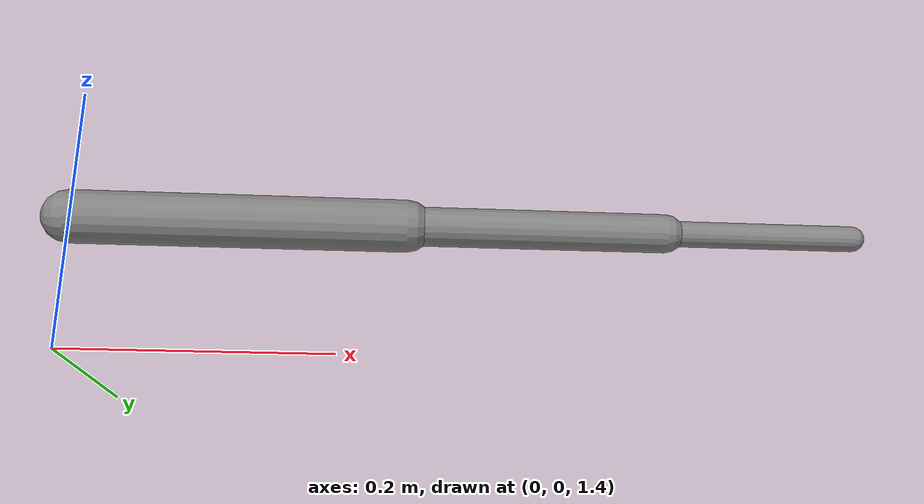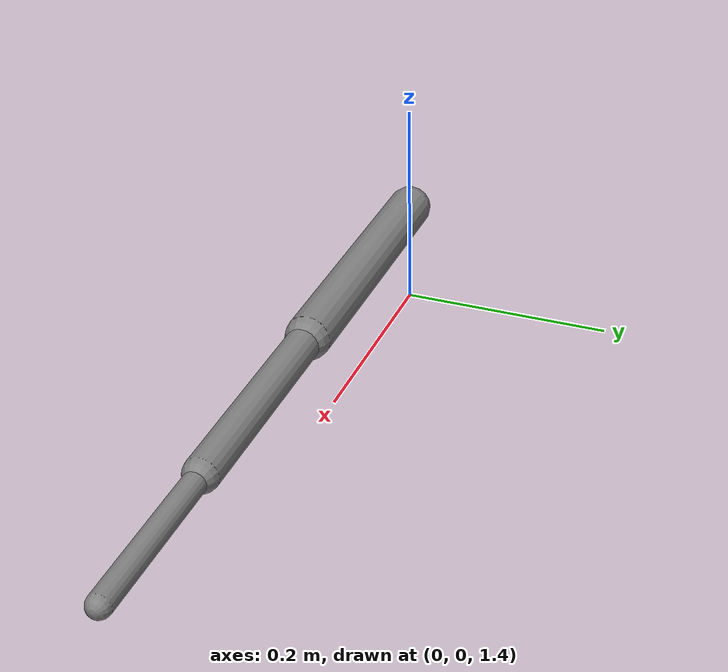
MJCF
<mujoco model="equality_model">
  <option gravity="0 0 -9.81" timestep="0.002"/>
  <worldbody>
    <body name="link1" pos="0 0 1.5">
      <joint name="joint1" type="hinge" axis="0 1 0"
             damping="0.3"/>
      <geom name="link1_geom" type="capsule" fromto="0 0 0 0.25 0 0"
            size="0.02" mass="1.0"/>

      <body name="link2" pos="0.25 0 0">
        <joint name="joint2" type="hinge" axis="0 1 0"
               damping="0.2"/>
        <geom name="link2_geom" type="capsule" fromto="0 0 0 0.2 0 0"
              size="0.015" mass="0.5"/>

        <body name="link3" pos="0.2 0 0">
          <joint name="joint3" type="hinge" axis="0 1 0"
                 damping="0.1"/>
          <geom name="link3_geom" type="capsule" fromto="0 0 0 0.15 0 0"
                size="0.01" mass="0.3"/>
        </body>
      </body>
    </body>
  </worldbody>

  <equality>
    <joint name="joint_coupling" joint1="joint1" joint2="joint2"
           polycoef="0 0.5 0 0 0"
           solref="0.02 1" solimp="0.9 0.95 0.001 0.5 2"/>
    <weld name="lock_joint3" body1="link2" body2="link3"
          solref="0.02 1" solimp="0.9 0.95 0.001 0.5 2"/>
  </equality>
</mujoco>
